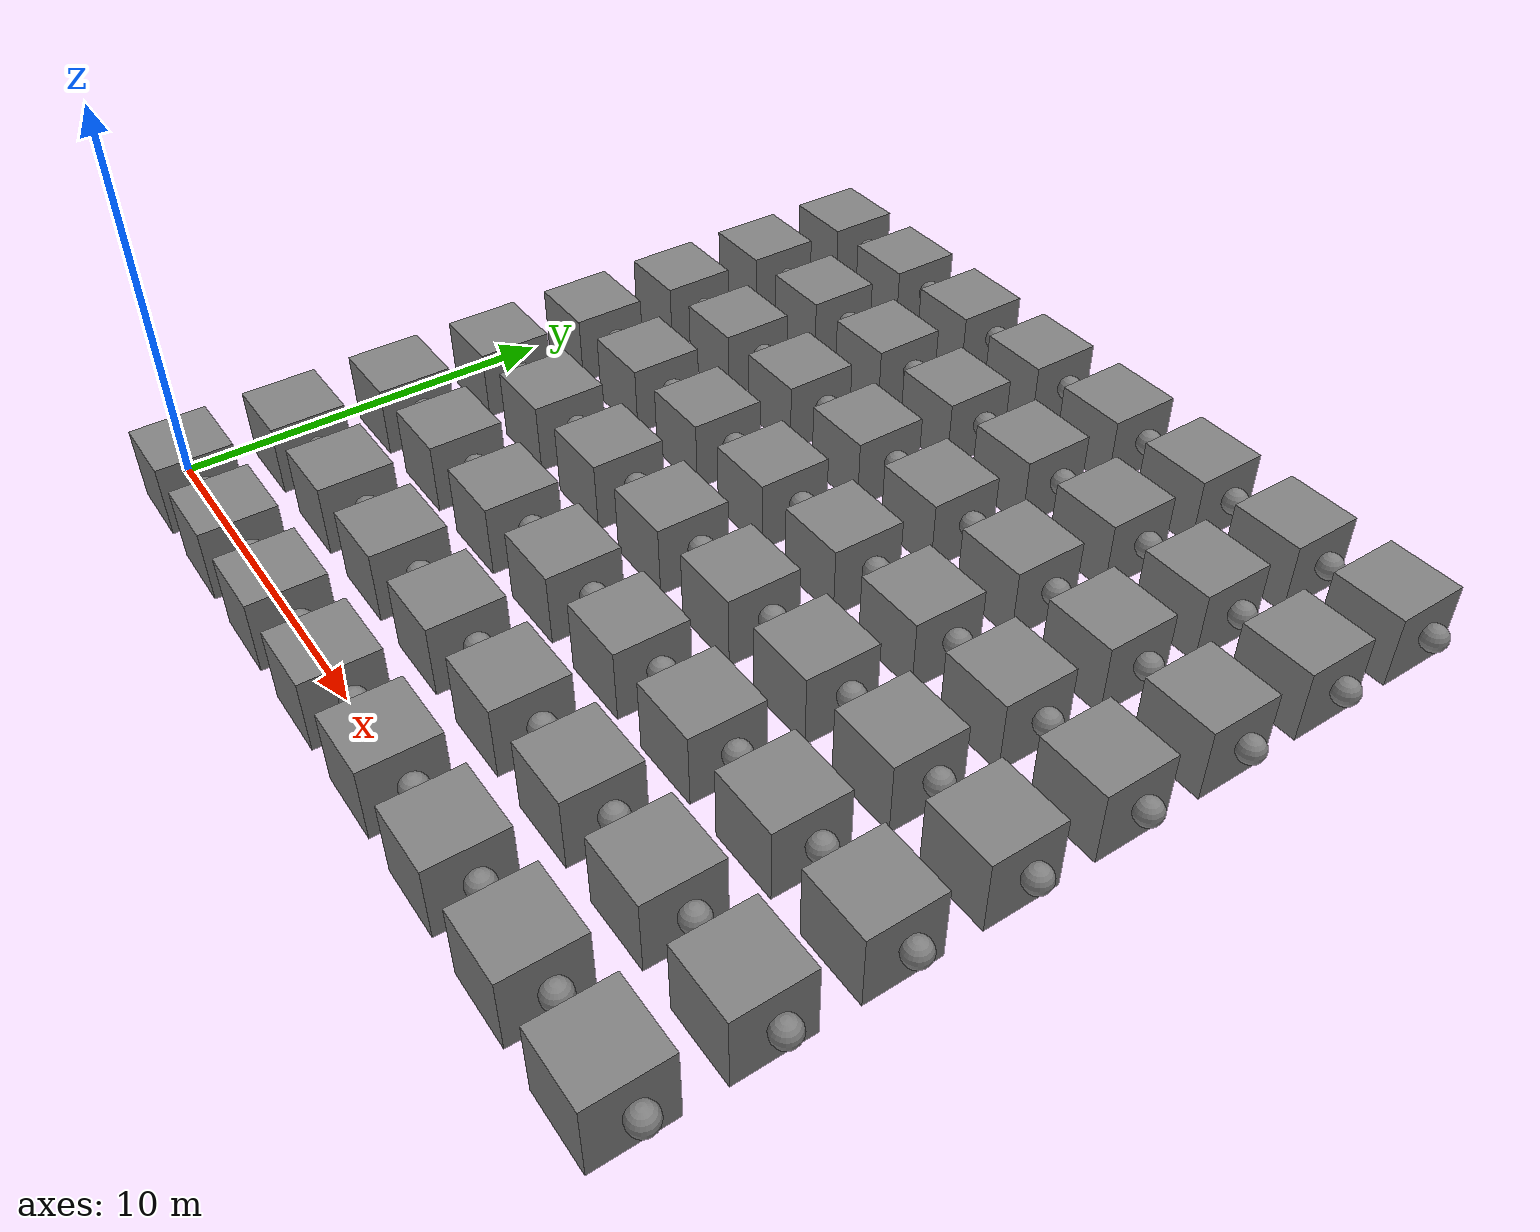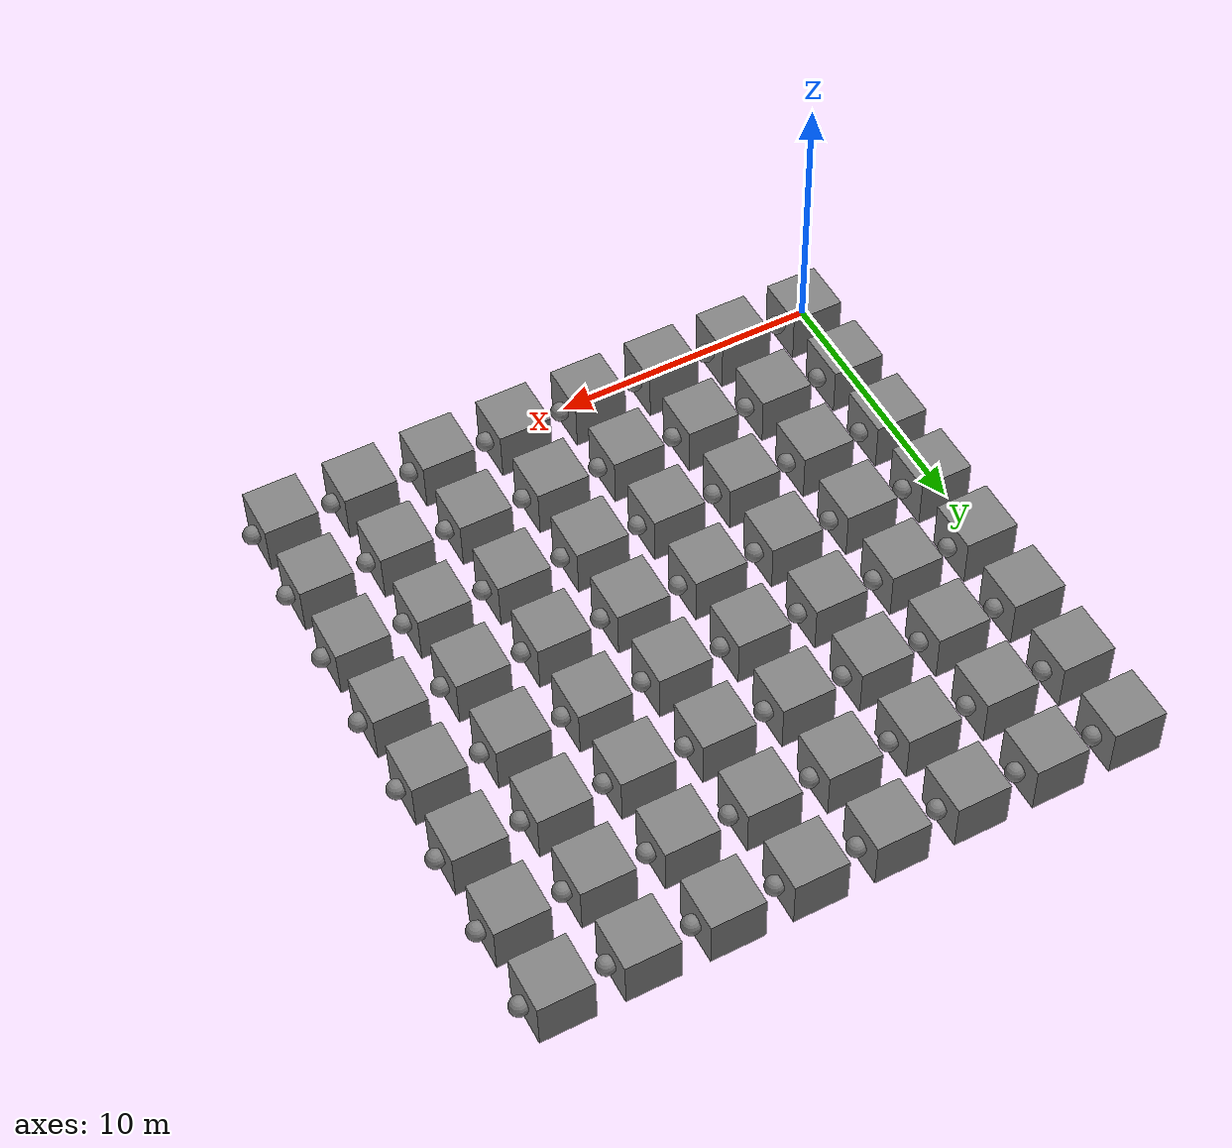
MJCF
<mujoco><asset><mesh name="cube" vertex="-1.0 -1.0 -1.0 -1.0 -1.0 1.0 -1.0 1.0 -1.0 -1.0 1.0 1.0 1.0 -1.0 -1.0 1.0 -1.0 1.0 1.0 1.0 -1.0 1.0 1.0 1.0"/></asset><worldbody><geom type="mesh" mesh="cube" pos="0 0 0"/><body pos="1.2 0.1 .07"><freejoint/><geom type="sphere" size=".35"/></body><geom type="mesh" mesh="cube" pos="3 0 0"/><body pos="4.2 0.1 .07"><freejoint/><geom type="sphere" size=".35"/></body><geom type="mesh" mesh="cube" pos="6 0 0"/><body pos="7.2 0.1 .07"><freejoint/><geom type="sphere" size=".35"/></body><geom type="mesh" mesh="cube" pos="9 0 0"/><body pos="10.2 0.1 .07"><freejoint/><geom type="sphere" size=".35"/></body><geom type="mesh" mesh="cube" pos="12 0 0"/><body pos="13.2 0.1 .07"><freejoint/><geom type="sphere" size=".35"/></body><geom type="mesh" mesh="cube" pos="15 0 0"/><body pos="16.2 0.1 .07"><freejoint/><geom type="sphere" size=".35"/></body><geom type="mesh" mesh="cube" pos="18 0 0"/><body pos="19.2 0.1 .07"><freejoint/><geom type="sphere" size=".35"/></body><geom type="mesh" mesh="cube" pos="21 0 0"/><body pos="22.2 0.1 .07"><freejoint/><geom type="sphere" size=".35"/></body><geom type="mesh" mesh="cube" pos="0 3 0"/><body pos="1.2 3.1 .07"><freejoint/><geom type="sphere" size=".35"/></body><geom type="mesh" mesh="cube" pos="3 3 0"/><body pos="4.2 3.1 .07"><freejoint/><geom type="sphere" size=".35"/></body><geom type="mesh" mesh="cube" pos="6 3 0"/><body pos="7.2 3.1 .07"><freejoint/><geom type="sphere" size=".35"/></body><geom type="mesh" mesh="cube" pos="9 3 0"/><body pos="10.2 3.1 .07"><freejoint/><geom type="sphere" size=".35"/></body><geom type="mesh" mesh="cube" pos="12 3 0"/><body pos="13.2 3.1 .07"><freejoint/><geom type="sphere" size=".35"/></body><geom type="mesh" mesh="cube" pos="15 3 0"/><body pos="16.2 3.1 .07"><freejoint/><geom type="sphere" size=".35"/></body><geom type="mesh" mesh="cube" pos="18 3 0"/><body pos="19.2 3.1 .07"><freejoint/><geom type="sphere" size=".35"/></body><geom type="mesh" mesh="cube" pos="21 3 0"/><body pos="22.2 3.1 .07"><freejoint/><geom type="sphere" size=".35"/></body><geom type="mesh" mesh="cube" pos="0 6 0"/><body pos="1.2 6.1 .07"><freejoint/><geom type="sphere" size=".35"/></body><geom type="mesh" mesh="cube" pos="3 6 0"/><body pos="4.2 6.1 .07"><freejoint/><geom type="sphere" size=".35"/></body><geom type="mesh" mesh="cube" pos="6 6 0"/><body pos="7.2 6.1 .07"><freejoint/><geom type="sphere" size=".35"/></body><geom type="mesh" mesh="cube" pos="9 6 0"/><body pos="10.2 6.1 .07"><freejoint/><geom type="sphere" size=".35"/></body><geom type="mesh" mesh="cube" pos="12 6 0"/><body pos="13.2 6.1 .07"><freejoint/><geom type="sphere" size=".35"/></body><geom type="mesh" mesh="cube" pos="15 6 0"/><body pos="16.2 6.1 .07"><freejoint/><geom type="sphere" size=".35"/></body><geom type="mesh" mesh="cube" pos="18 6 0"/><body pos="19.2 6.1 .07"><freejoint/><geom type="sphere" size=".35"/></body><geom type="mesh" mesh="cube" pos="21 6 0"/><body pos="22.2 6.1 .07"><freejoint/><geom type="sphere" size=".35"/></body><geom type="mesh" mesh="cube" pos="0 9 0"/><body pos="1.2 9.1 .07"><freejoint/><geom type="sphere" size=".35"/></body><geom type="mesh" mesh="cube" pos="3 9 0"/><body pos="4.2 9.1 .07"><freejoint/><geom type="sphere" size=".35"/></body><geom type="mesh" mesh="cube" pos="6 9 0"/><body pos="7.2 9.1 .07"><freejoint/><geom type="sphere" size=".35"/></body><geom type="mesh" mesh="cube" pos="9 9 0"/><body pos="10.2 9.1 .07"><freejoint/><geom type="sphere" size=".35"/></body><geom type="mesh" mesh="cube" pos="12 9 0"/><body pos="13.2 9.1 .07"><freejoint/><geom type="sphere" size=".35"/></body><geom type="mesh" mesh="cube" pos="15 9 0"/><body pos="16.2 9.1 .07"><freejoint/><geom type="sphere" size=".35"/></body><geom type="mesh" mesh="cube" pos="18 9 0"/><body pos="19.2 9.1 .07"><freejoint/><geom type="sphere" size=".35"/></body><geom type="mesh" mesh="cube" pos="21 9 0"/><body pos="22.2 9.1 .07"><freejoint/><geom type="sphere" size=".35"/></body><geom type="mesh" mesh="cube" pos="0 12 0"/><body pos="1.2 12.1 .07"><freejoint/><geom type="sphere" size=".35"/></body><geom type="mesh" mesh="cube" pos="3 12 0"/><body pos="4.2 12.1 .07"><freejoint/><geom type="sphere" size=".35"/></body><geom type="mesh" mesh="cube" pos="6 12 0"/><body pos="7.2 12.1 .07"><freejoint/><geom type="sphere" size=".35"/></body><geom type="mesh" mesh="cube" pos="9 12 0"/><body pos="10.2 12.1 .07"><freejoint/><geom type="sphere" size=".35"/></body><geom type="mesh" mesh="cube" pos="12 12 0"/><body pos="13.2 12.1 .07"><freejoint/><geom type="sphere" size=".35"/></body><geom type="mesh" mesh="cube" pos="15 12 0"/><body pos="16.2 12.1 .07"><freejoint/><geom type="sphere" size=".35"/></body><geom type="mesh" mesh="cube" pos="18 12 0"/><body pos="19.2 12.1 .07"><freejoint/><geom type="sphere" size=".35"/></body><geom type="mesh" mesh="cube" pos="21 12 0"/><body pos="22.2 12.1 .07"><freejoint/><geom type="sphere" size=".35"/></body><geom type="mesh" mesh="cube" pos="0 15 0"/><body pos="1.2 15.1 .07"><freejoint/><geom type="sphere" size=".35"/></body><geom type="mesh" mesh="cube" pos="3 15 0"/><body pos="4.2 15.1 .07"><freejoint/><geom type="sphere" size=".35"/></body><geom type="mesh" mesh="cube" pos="6 15 0"/><body pos="7.2 15.1 .07"><freejoint/><geom type="sphere" size=".35"/></body><geom type="mesh" mesh="cube" pos="9 15 0"/><body pos="10.2 15.1 .07"><freejoint/><geom type="sphere" size=".35"/></body><geom type="mesh" mesh="cube" pos="12 15 0"/><body pos="13.2 15.1 .07"><freejoint/><geom type="sphere" size=".35"/></body><geom type="mesh" mesh="cube" pos="15 15 0"/><body pos="16.2 15.1 .07"><freejoint/><geom type="sphere" size=".35"/></body><geom type="mesh" mesh="cube" pos="18 15 0"/><body pos="19.2 15.1 .07"><freejoint/><geom type="sphere" size=".35"/></body><geom type="mesh" mesh="cube" pos="21 15 0"/><body pos="22.2 15.1 .07"><freejoint/><geom type="sphere" size=".35"/></body><geom type="mesh" mesh="cube" pos="0 18 0"/><body pos="1.2 18.1 .07"><freejoint/><geom type="sphere" size=".35"/></body><geom type="mesh" mesh="cube" pos="3 18 0"/><body pos="4.2 18.1 .07"><freejoint/><geom type="sphere" size=".35"/></body><geom type="mesh" mesh="cube" pos="6 18 0"/><body pos="7.2 18.1 .07"><freejoint/><geom type="sphere" size=".35"/></body><geom type="mesh" mesh="cube" pos="9 18 0"/><body pos="10.2 18.1 .07"><freejoint/><geom type="sphere" size=".35"/></body><geom type="mesh" mesh="cube" pos="12 18 0"/><body pos="13.2 18.1 .07"><freejoint/><geom type="sphere" size=".35"/></body><geom type="mesh" mesh="cube" pos="15 18 0"/><body pos="16.2 18.1 .07"><freejoint/><geom type="sphere" size=".35"/></body><geom type="mesh" mesh="cube" pos="18 18 0"/><body pos="19.2 18.1 .07"><freejoint/><geom type="sphere" size=".35"/></body><geom type="mesh" mesh="cube" pos="21 18 0"/><body pos="22.2 18.1 .07"><freejoint/><geom type="sphere" size=".35"/></body><geom type="mesh" mesh="cube" pos="0 21 0"/><body pos="1.2 21.1 .07"><freejoint/><geom type="sphere" size=".35"/></body><geom type="mesh" mesh="cube" pos="3 21 0"/><body pos="4.2 21.1 .07"><freejoint/><geom type="sphere" size=".35"/></body><geom type="mesh" mesh="cube" pos="6 21 0"/><body pos="7.2 21.1 .07"><freejoint/><geom type="sphere" size=".35"/></body><geom type="mesh" mesh="cube" pos="9 21 0"/><body pos="10.2 21.1 .07"><freejoint/><geom type="sphere" size=".35"/></body><geom type="mesh" mesh="cube" pos="12 21 0"/><body pos="13.2 21.1 .07"><freejoint/><geom type="sphere" size=".35"/></body><geom type="mesh" mesh="cube" pos="15 21 0"/><body pos="16.2 21.1 .07"><freejoint/><geom type="sphere" size=".35"/></body><geom type="mesh" mesh="cube" pos="18 21 0"/><body pos="19.2 21.1 .07"><freejoint/><geom type="sphere" size=".35"/></body><geom type="mesh" mesh="cube" pos="21 21 0"/><body pos="22.2 21.1 .07"><freejoint/><geom type="sphere" size=".35"/></body></worldbody></mujoco>
